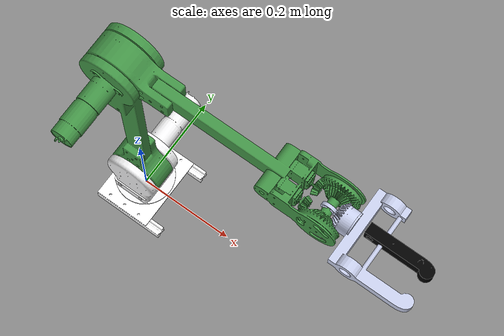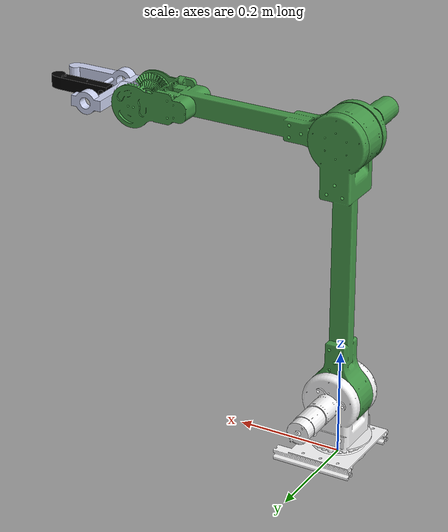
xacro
<?xml version="1.0"?>
<robot xmlns:xacro="http://www.ros.org/wiki/xacro" name="rover_arm">
    <xacro:arg name="initial_positions_file" default="initial_positions.yaml" />

    <!-- Import rover_arm urdf file -->
    <xacro:include filename="$(find rover_arm)/urdf/rover_arm.urdf" />

    <!-- Import control_xacro -->
    <xacro:include filename="rover_arm.ros2_control.xacro" />

    <xacro:rover_arm_ros2_control name="FakeSystem" initial_positions_file="$(arg initial_positions_file)"/>

</robot>

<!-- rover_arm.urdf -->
<robot
  name="rover_arm">

    <link name="world"/>

  <joint name="world_joint" type="fixed">
    <parent link="world"/>
    <child link="base_link"/>
    <origin xyz="0 0 0" rpy="0 0 0"/>
  </joint>

  <link
    name="base_link">
    <inertial>
      <origin
        xyz="0.00687930292992112 -5.41233724504764E-16 0.0134758677537272"
        rpy="0 0 0" />
      <mass
        value="0.107549490172523" />
      <inertia
        ixx="0.000129185873904102"
        ixy="1.35843292566697E-19"
        ixz="3.62338947266451E-19"
        iyy="0.000167948580816449"
        iyz="-1.18461477534074E-18"
        izz="0.000292377352216446" />
    </inertial>
    <visual>
      <origin
        xyz="0 0 0"
        rpy="0 0 0" />
      <geometry>
        <mesh
          filename="package://rover_arm/meshes/base_link.STL" />
      </geometry>
      <material
        name="">
        <color
          rgba="0.996078431372549 0.996078431372549 1 1" />
      </material>
    </visual>
    <collision>
      <origin
        xyz="0 0 0"
        rpy="0 0 0" />
      <geometry>
        <mesh
          filename="package://rover_arm/meshes/base_link.STL" />
      </geometry>
    </collision>
  </link>
  <link
    name="shoulder_link">
    <inertial>
      <origin
        xyz="8.32231213188095E-06 0.0203402526286956 0.0551734534765064"
        rpy="0 0 0" />
      <mass
        value="0.855475627966906" />
      <inertia
        ixx="0.00111103760161046"
        ixy="1.94540837133742E-08"
        ixz="2.1295728671634E-08"
        iyy="0.00127941202345426"
        iyz="5.19186552494487E-07"
        izz="0.00084308013698595" />
    </inertial>
    <visual>
      <origin
        xyz="0 0 0"
        rpy="0 0 0" />
      <geometry>
        <mesh
          filename="package://rover_arm/meshes/shoulder_link.STL" />
      </geometry>
      <material
        name="">
        <color
          rgba="0.96078431372549 0.96078431372549 0.964705882352941 1" />
      </material>
    </visual>
    <collision>
      <origin
        xyz="0 0 0"
        rpy="0 0 0" />
      <geometry>
        <mesh
          filename="package://rover_arm/meshes/shoulder_link.STL" />
      </geometry>
    </collision>
  </link>
  <joint
    name="shoulder_joint"
    type="revolute">
    <origin
      xyz="0 0 0.0345"
      rpy="0 0 0" />
    <parent
      link="base_link" />
    <child
      link="shoulder_link" />
    <axis
      xyz="0 0 1" />
    <limit
      lower="-3.14"
      upper="3.14"
      effort="10.5"
      velocity="1.5" />
  </joint>
  <link
    name="upperarm_link">
    <inertial>
      <origin
        xyz="-2.70918179823276E-06 0.034430199275424 0.310830598763632"
        rpy="0 0 0" />
      <mass
        value="1.69162786755335" />
      <inertia
        ixx="0.0101293308172892"
        ixy="-5.91623806826241E-08"
        ixz="-9.28412403243426E-08"
        iyy="0.0105489254219991"
        iyz="-4.30319037658778E-07"
        izz="0.000907812411984246" />
    </inertial>
    <visual>
      <origin
        xyz="0 0 0"
        rpy="0 0 0" />
      <geometry>
        <mesh
          filename="package://rover_arm/meshes/upperarm_link.STL" />
      </geometry>
      <material
        name="">
        <color
          rgba="0.266666666666667 0.588235294117647 0.282352941176471 1" />
      </material>
    </visual>
    <collision>
      <origin
        xyz="0 0 0"
        rpy="0 0 0" />
      <geometry>
        <mesh
          filename="package://rover_arm/meshes/upperarm_link.STL" />
      </geometry>
    </collision>
  </link>
  <joint
    name="upperarm_joint"
    type="revolute">
    <origin
      xyz="0 -0.044706 0.083"
      rpy="0 0 0" />
    <parent
      link="shoulder_link" />
    <child
      link="upperarm_link" />
    <axis
      xyz="0 -1 0" />
    <limit
      lower="-1.57"
      upper="1.57"
      effort="10.5"
      velocity="1.5" />
  </joint>
  <link
    name="elbow_link">
    <inertial>
      <origin
        xyz="0.204722227074469 -0.0419483035815702 -0.00157486053082279"
        rpy="0 0 0" />
      <mass
        value="1.07922630503039" />
      <inertia
        ixx="0.000419181010760536"
        ixy="7.11741809370692E-08"
        ixz="6.10025801738287E-06"
        iyy="0.00391113124957561"
        iyz="-3.06017160267862E-12"
        izz="0.00358543795771881" />
    </inertial>
    <visual>
      <origin
        xyz="0 0 0"
        rpy="0 0 0" />
      <geometry>
        <mesh
          filename="package://rover_arm/meshes/elbow_link.STL" />
      </geometry>
      <material
        name="">
        <color
          rgba="0.266666666666667 0.588235294117647 0.282352941176471 1" />
      </material>
    </visual>
    <collision>
      <origin
        xyz="0 0 0"
        rpy="0 0 0" />
      <geometry>
        <mesh
          filename="package://rover_arm/meshes/elbow_link.STL" />
      </geometry>
    </collision>
  </link>
  <joint
    name="elbow_joint"
    type="revolute">
    <origin
      xyz="0 0.086169 0.497"
      rpy="0 0 0" />
    <parent
      link="upperarm_link" />
    <child
      link="elbow_link" />
    <axis
      xyz="0 -1 0" />
    <limit
      lower="-1.57"
      upper="3.14"
      effort="10.5"
      velocity="1.5" />
  </joint>
  <link
    name="wrist1_link">
    <inertial>
      <origin
        xyz="0.0302374140928486 -0.0029999997213056 5.0144521868134E-10"
        rpy="0 0 0" />
      <mass
        value="0.039237317766174" />
      <inertia
        ixx="1.15363222488905E-05"
        ixy="4.01230758868372E-14"
        ixz="8.39085802463508E-14"
        iyy="6.67525690136622E-06"
        iyz="-7.70014150865565E-14"
        izz="6.60545008536105E-06" />
    </inertial>
    <visual>
      <origin
        xyz="0 0 0"
        rpy="0 0 0" />
      <geometry>
        <mesh
          filename="package://rover_arm/meshes/wrist1_link.STL" />
      </geometry>
      <material
        name="">
        <color
          rgba="0.792156862745098 0.819607843137255 0.933333333333333 1" />
      </material>
    </visual>
    <collision>
      <origin
        xyz="0 0 0"
        rpy="0 0 0" />
      <geometry>
        <mesh
          filename="package://rover_arm/meshes/wrist1_link.STL" />
      </geometry>
    </collision>
  </link>
  <joint
    name="wrist1_joint"
    type="revolute">
    <origin
      xyz="0.40386 -0.039 -0.011"
      rpy="0 0 0" />
    <parent
      link="elbow_link" />
    <child
      link="wrist1_link" />
    <axis
      xyz="0 1 0" />
    <limit
      lower="-1.57"
      upper="1.57"
      effort="10.5"
      velocity="1.5" />
  </joint>
  <link
    name="wrist2_link">
    <inertial>
      <origin
        xyz="0.0412194856485808 -0.0161936654386357 7.08549571259987E-06"
        rpy="0 0 0" />
      <mass
        value="0.132797730298268" />
      <inertia
        ixx="0.000325802306284526"
        ixy="0.000112637927863482"
        ixz="1.47176339144941E-08"
        iyy="0.000208154553092543"
        iyz="-1.50492483398845E-08"
        izz="0.000516192730665238" />
    </inertial>
    <visual>
      <origin
        xyz="0 0 0"
        rpy="0 0 0" />
      <geometry>
        <mesh
          filename="package://rover_arm/meshes/wrist2_link.STL" />
      </geometry>
      <material
        name="">
        <color
          rgba="0.792156862745098 0.819607843137255 0.933333333333333 1" />
      </material>
    </visual>
    <collision>
      <origin
        xyz="0 0 0"
        rpy="0 0 0" />
      <geometry>
        <mesh
          filename="package://rover_arm/meshes/wrist2_link.STL" />
      </geometry>
    </collision>
  </link>
  <joint
    name="wrist2_joint"
    type="revolute">
    <origin
      xyz="0.049 -0.003 0"
      rpy="0 0 0" />
    <parent
      link="wrist1_link" />
    <child
      link="wrist2_link" />
    <axis
      xyz="-1 0 0" />
    <limit
      lower="-3.14"
      upper="3.14"
      effort="10.5"
      velocity="1.5" />
  </joint>
  <link
    name="ee_link">
    <inertial>
      <origin
        xyz="-0.045802 0.0041133 -0.00845"
        rpy="0 0 0" />
      <mass
        value="0.054422" />
      <inertia
        ixx="4.2801E-06"
        ixy="2.2691E-06"
        ixz="1.4323E-07"
        iyy="6.8002E-05"
        iyz="-3.0715E-09"
        izz="6.801E-05" />
    </inertial>
    <visual>
      <origin
        xyz="0 0 0"
        rpy="0 0 0" />
      <geometry>
        <mesh
          filename="package://rover_arm/meshes/ee_link.STL" />
      </geometry>
      <material
        name="">
        <color
          rgba="0 0 0 1" />
      </material>
    </visual>
    <collision>
      <origin
        xyz="0 0 0"
        rpy="0 0 0" />
      <geometry>
        <mesh
          filename="package://rover_arm/meshes/ee_link.STL" />
      </geometry>
    </collision>
  </link>
  <joint
    name="ee_joint"
    type="fixed">
    <origin
      xyz="0.13 0.002 0.01"
      rpy="0 0 0" />
    <parent
      link="wrist2_link" />
    <child
      link="ee_link" />
    <axis
      xyz="0 0 0" />
  </joint>
  <link name="ee_rotation_z"/>
    <joint name="ee_rotation_joint_z" type="revolute">
      <origin xyz="0 0 0" rpy="0 0 0"/>
      <parent link="ee_link"/>
      <child link="ee_rotation_z"/>
      <axis xyz="0 0 1"/>
      <limit lower="-3.1416" upper="3.1416" effort="10.5" velocity="1.5"/>
    </joint>
</robot>
